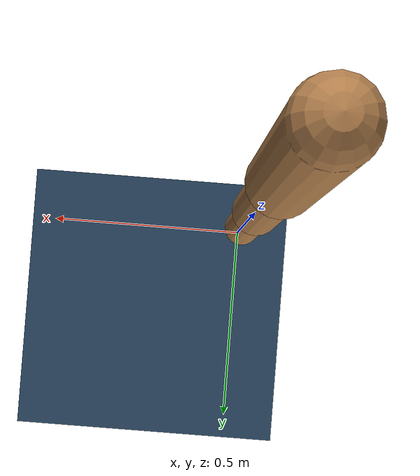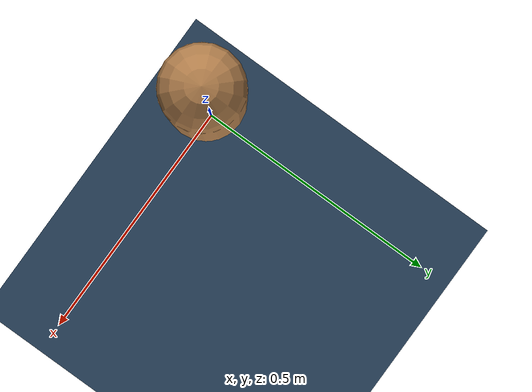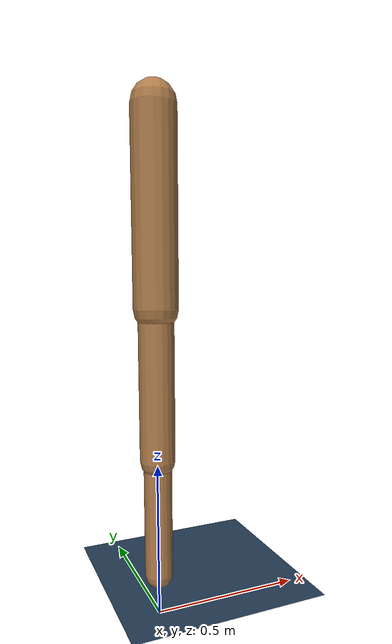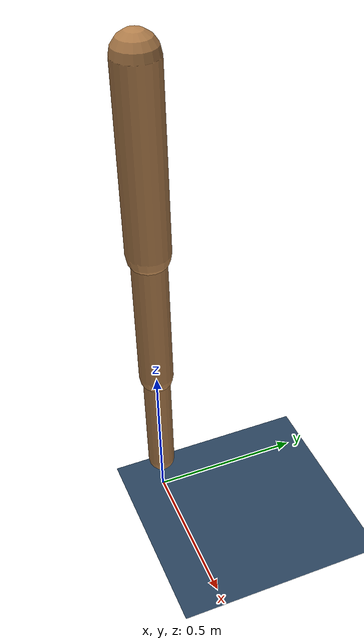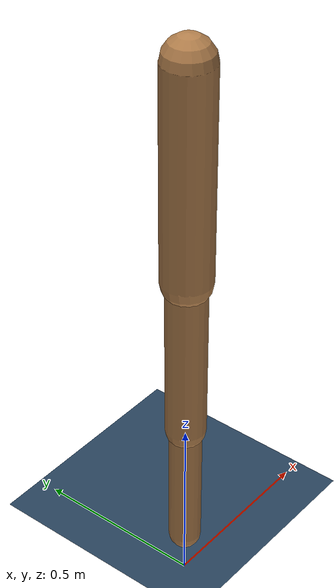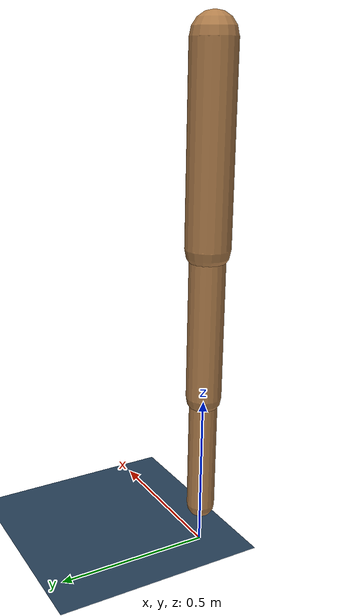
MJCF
<mujoco model="walker_generic">
  <compiler angle="radian" autolimits="true"/>
  <option integrator="RK4"/>
  <visual>
    <quality shadowsize="2048"/>
    <headlight ambient="0.4 0.4 0.4" diffuse="0.8 0.8 0.8" specular="0.1 0.1 0.1"/>
  </visual>
  <default class="main">
    <joint limited="true" armature="0.01" damping="0.1"/>
    <geom conaffinity="0" friction="0.7 0.1 0.1" material="self"/>
  </default>
  <asset>
    <texture type="skybox" name="skybox" builtin="gradient" mark="random" rgb1="0.4 0.6 0.8" rgb2="0 0 0" markrgb="1 1 1" width="800" height="4800"/>
    <texture type="2d" name="grid" builtin="checker" mark="edge" rgb1="0.1 0.2 0.3" rgb2="0.2 0.3 0.4" markrgb="0.2 0.3 0.4" width="300" height="300"/>
    <material name="grid" texture="grid" texuniform="true" reflectance="0.2"/>
    <material name="self" rgba="0.7 0.5 0.3 1"/>
    <material name="self_default" rgba="0.7 0.5 0.3 1"/>
    <material name="self_highlight" rgba="0 0.5 0.3 1"/>
    <material name="effector" rgba="0.7 0.4 0.2 1"/>
    <material name="effector_default" rgba="0.7 0.4 0.2 1"/>
    <material name="effector_highlight" rgba="0 0.5 0.3 1"/>
    <material name="decoration" rgba="0.3 0.5 0.7 1"/>
    <material name="eye" rgba="0 0.2 1 1"/>
    <material name="target" rgba="0.6 0.3 0.3 1"/>
    <material name="target_default" rgba="0.6 0.3 0.3 1"/>
    <material name="target_highlight" rgba="0.6 0.3 0.3 0.4"/>
    <material name="site" rgba="0.5 0.5 0.5 0.3"/>
  </asset>
  <worldbody>
    <geom name="floor" size="40 40 40" type="plane" conaffinity="1" material="grid"/>
    <light pos="0 0 1.3" dir="-0.5547 0 -0.83205" directional="true" cutoff="100" exponent="1" diffuse="1 1 1" specular="0.1 0.1 0.1"/>
    <body name="torso" pos="0 0 1.6" gravcomp="0">
      <joint name="rootx" pos="0 0 -1.6" axis="1 0 0" limited="false" type="slide" armature="0" damping="0"/>
      <joint name="rootz" pos="0 0 -1.6" axis="0 0 1" limited="false" type="slide" ref="1.25" armature="0" damping="0"/>
      <joint name="rooty" pos="0 0 -0.35" axis="0 1 0" limited="false" armature="0" damping="0"/>
      <geom name="torso_geom" size="0.07 0.3" pos="0 0 -0.3" type="capsule" friction="0.9 0.1 0.1"/>
      <camera name="tilted" pos="2.7 3 -0.6" quat="0.660169 -0.660169 0.253331 -0.253331" mode="trackcom"/>
      <camera name="track" pos="0 3 -0.6" quat="0.707107 -0.707107 0 0" mode="trackcom"/>
      <body name="left1" pos="0 0 -0.6" gravcomp="0">
        <joint name="left1_joint" pos="0 0 0" axis="0 -1 0" range="-1.309 1.309"/>
        <geom name="left1_geom" size="0.056 0.24" pos="0 0 -0.24" type="capsule" friction="0.9 0.1 0.1"/>
        <body name="left2" pos="0 0 -0.48" gravcomp="0">
          <joint name="left2_joint" pos="0 0 0" axis="0 -1 0" range="-1.309 1.309"/>
          <geom name="left2_geom" size="0.0448 0.192" pos="0 0 -0.192" type="capsule" friction="0.9 0.1 0.1"/>
        </body>
      </body>
      <body name="right1" pos="0 0 -0.6" gravcomp="0">
        <joint name="right1_joint" pos="0 0 0" axis="0 -1 0" range="-1.309 1.309"/>
        <geom name="right1" size="0.056 0.24" pos="0 0 -0.24" type="capsule" friction="0.9 0.1 0.1"/>
        <body name="right2" pos="0 0 -0.48" gravcomp="0">
          <joint name="right2_joint" pos="0 0 0" axis="0 -1 0" range="-1.309 1.309"/>
          <geom name="right2" size="0.0448 0.192" pos="0 0 -0.192" type="capsule" friction="0.9 0.1 0.1"/>
        </body>
      </body>
    </body>
  </worldbody>
  <actuator>
    <general joint="left1_joint" ctrlrange="-1 1" gear="100 0 0 0 0 0" actdim="0"/>
    <general joint="left2_joint" ctrlrange="-1 1" gear="100 0 0 0 0 0" actdim="0"/>
    <general joint="right1_joint" ctrlrange="-1 1" gear="100 0 0 0 0 0" actdim="0"/>
    <general joint="right2_joint" ctrlrange="-1 1" gear="100 0 0 0 0 0" actdim="0"/>
  </actuator>
</mujoco>
